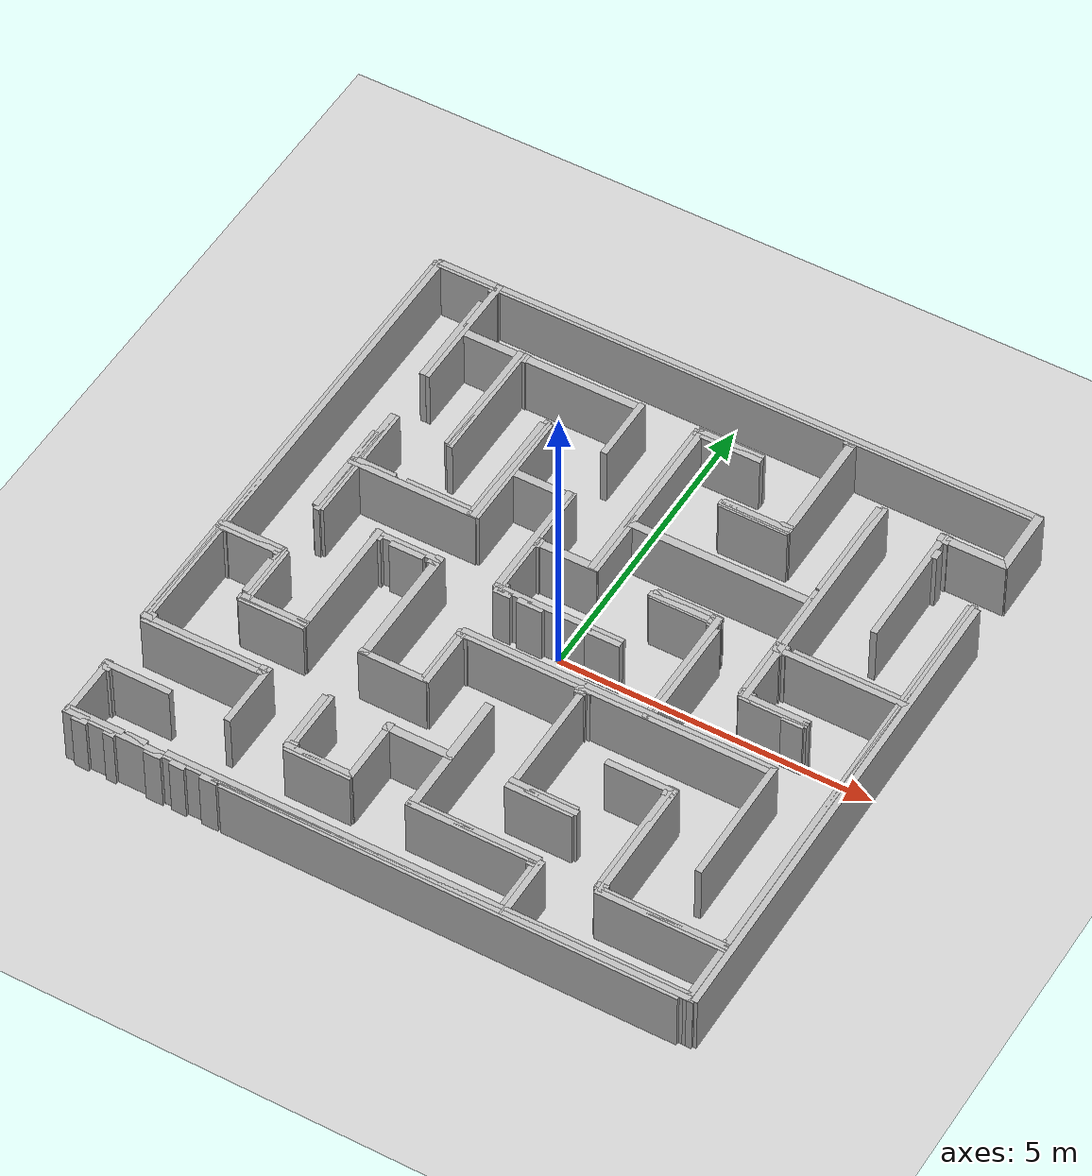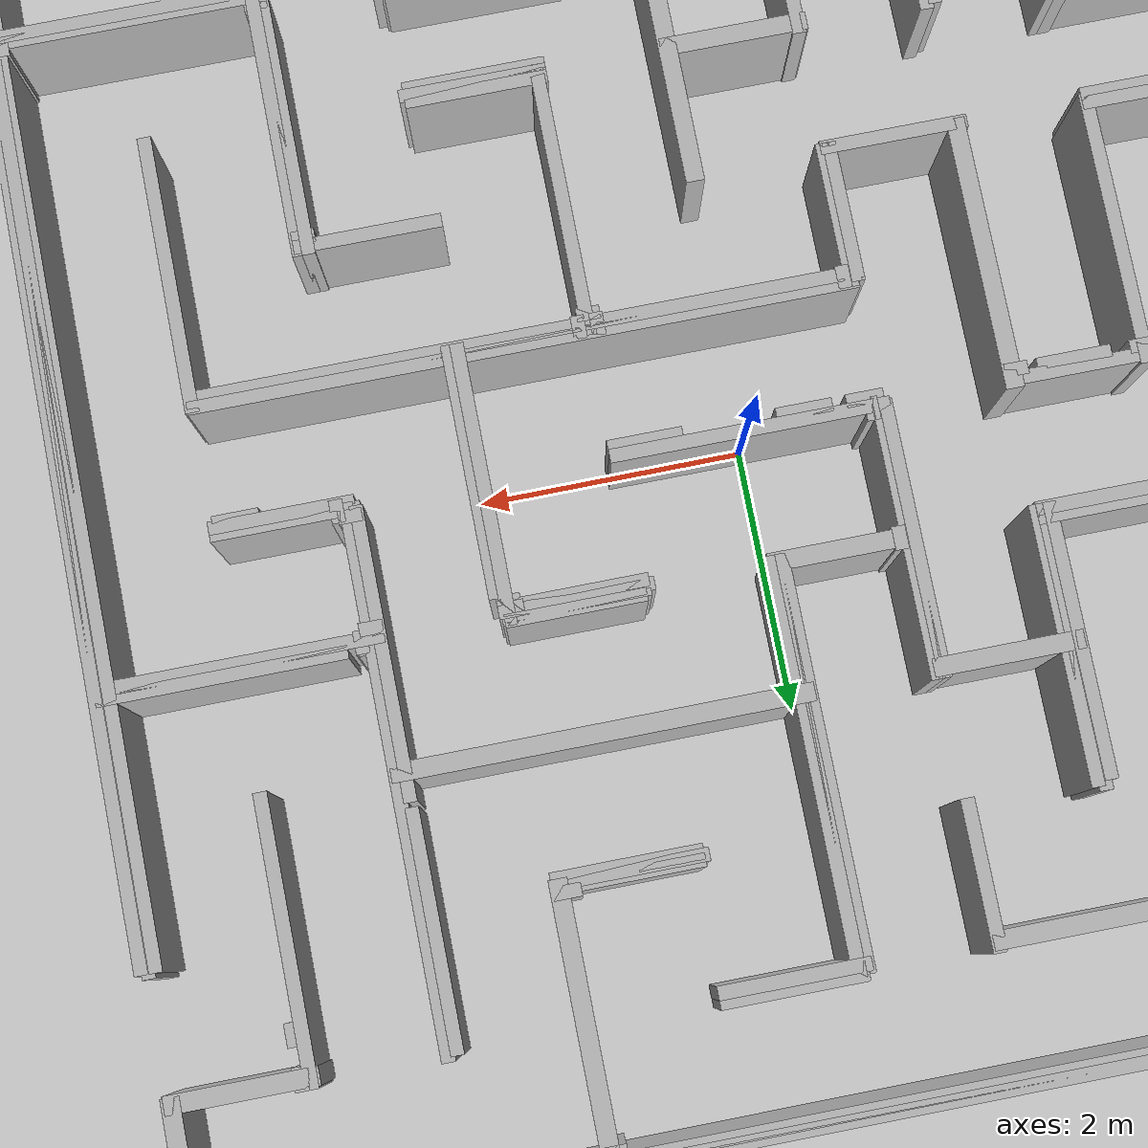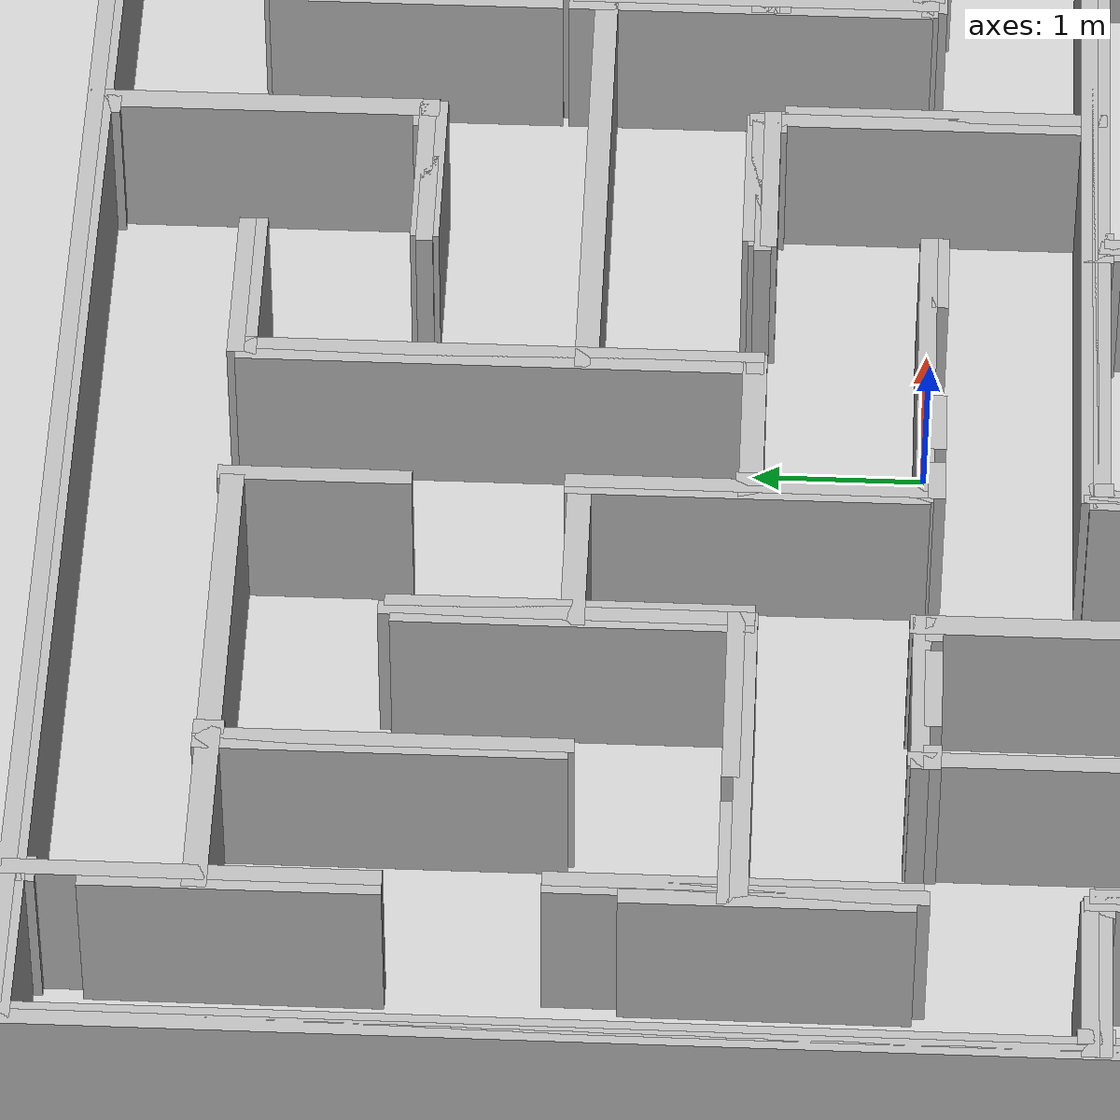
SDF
<?xml version="1.0" ?>
<sdf version="1.6">
  <world name="maze_from_image">
    <include><uri>model://sun</uri></include>
    <include><uri>model://ground_plane</uri></include>
    <model name="wall_h0">
      <static>true</static><pose>0.000 4.983 0.5 0 0 0</pose>
      <link name="link"><collision name="c"><geometry><box><size>9.965 0.100 1.0</size></box></geometry></collision>
      <visual name="v"><geometry><box><size>9.965 0.100 1.0</size></box></geometry></visual></link>
    </model>
    <model name="wall_h1">
      <static>true</static><pose>-0.017 4.931 0.5 0 0 0</pose>
      <link name="link"><collision name="c"><geometry><box><size>10.000 0.100 1.0</size></box></geometry></collision>
      <visual name="v"><geometry><box><size>10.000 0.100 1.0</size></box></geometry></visual></link>
    </model>
    <model name="wall_h2">
      <static>true</static><pose>-3.958 4.878 0.5 0 0 0</pose>
      <link name="link"><collision name="c"><geometry><box><size>0.174 0.100 1.0</size></box></geometry></collision>
      <visual name="v"><geometry><box><size>0.174 0.100 1.0</size></box></geometry></visual></link>
    </model>
    <model name="wall_h3">
      <static>true</static><pose>1.944 4.878 0.5 0 0 0</pose>
      <link name="link"><collision name="c"><geometry><box><size>0.174 0.100 1.0</size></box></geometry></collision>
      <visual name="v"><geometry><box><size>0.174 0.100 1.0</size></box></geometry></visual></link>
    </model>
    <model name="wall_h4">
      <static>true</static><pose>-2.500 3.958 0.5 0 0 0</pose>
      <link name="link"><collision name="c"><geometry><box><size>3.090 0.139 1.0</size></box></geometry></collision>
      <visual name="v"><geometry><box><size>3.090 0.139 1.0</size></box></geometry></visual></link>
    </model>
    <model name="wall_h5">
      <static>true</static><pose>0.486 4.010 0.5 0 0 0</pose>
      <link name="link"><collision name="c"><geometry><box><size>1.076 0.100 1.0</size></box></geometry></collision>
      <visual name="v"><geometry><box><size>1.076 0.100 1.0</size></box></geometry></visual></link>
    </model>
    <model name="wall_h6">
      <static>true</static><pose>4.427 3.958 0.5 0 0 0</pose>
      <link name="link"><collision name="c"><geometry><box><size>1.111 0.139 1.0</size></box></geometry></collision>
      <visual name="v"><geometry><box><size>1.111 0.139 1.0</size></box></geometry></visual></link>
    </model>
    <model name="wall_h7">
      <static>true</static><pose>0.469 3.941 0.5 0 0 0</pose>
      <link name="link"><collision name="c"><geometry><box><size>1.111 0.104 1.0</size></box></geometry></collision>
      <visual name="v"><geometry><box><size>1.111 0.104 1.0</size></box></geometry></visual></link>
    </model>
    <model name="wall_h8">
      <static>true</static><pose>1.927 3.038 0.5 0 0 0</pose>
      <link name="link"><collision name="c"><geometry><box><size>0.208 0.100 1.0</size></box></geometry></collision>
      <visual name="v"><geometry><box><size>0.208 0.100 1.0</size></box></geometry></visual></link>
    </model>
    <model name="wall_h9">
      <static>true</static><pose>1.476 3.003 0.5 0 0 0</pose>
      <link name="link"><collision name="c"><geometry><box><size>1.111 0.100 1.0</size></box></geometry></collision>
      <visual name="v"><geometry><box><size>1.111 0.100 1.0</size></box></geometry></visual></link>
    </model>
    <model name="wall_h10">
      <static>true</static><pose>1.458 2.969 0.5 0 0 0</pose>
      <link name="link"><collision name="c"><geometry><box><size>1.146 0.100 1.0</size></box></geometry></collision>
      <visual name="v"><geometry><box><size>1.146 0.100 1.0</size></box></geometry></visual></link>
    </model>
    <model name="wall_h11">
      <static>true</static><pose>1.476 2.934 0.5 0 0 0</pose>
      <link name="link"><collision name="c"><geometry><box><size>1.111 0.100 1.0</size></box></geometry></collision>
      <visual name="v"><geometry><box><size>1.111 0.100 1.0</size></box></geometry></visual></link>
    </model>
    <model name="wall_h12">
      <static>true</static><pose>-1.510 1.979 0.5 0 0 0</pose>
      <link name="link"><collision name="c"><geometry><box><size>1.111 0.139 1.0</size></box></geometry></collision>
      <visual name="v"><geometry><box><size>1.111 0.139 1.0</size></box></geometry></visual></link>
    </model>
    <model name="wall_h13">
      <static>true</static><pose>1.458 1.979 0.5 0 0 0</pose>
      <link name="link"><collision name="c"><geometry><box><size>3.090 0.139 1.0</size></box></geometry></collision>
      <visual name="v"><geometry><box><size>3.090 0.139 1.0</size></box></geometry></visual></link>
    </model>
    <model name="wall_h14">
      <static>true</static><pose>-3.681 1.059 0.5 0 0 0</pose>
      <link name="link"><collision name="c"><geometry><box><size>0.729 0.100 1.0</size></box></geometry></collision>
      <visual name="v"><geometry><box><size>0.729 0.100 1.0</size></box></geometry></visual></link>
    </model>
    <model name="wall_h15">
      <static>true</static><pose>-2.535 1.059 0.5 0 0 0</pose>
      <link name="link"><collision name="c"><geometry><box><size>1.215 0.100 1.0</size></box></geometry></collision>
      <visual name="v"><geometry><box><size>1.215 0.100 1.0</size></box></geometry></visual></link>
    </model>
    <model name="wall_h16">
      <static>true</static><pose>-0.503 1.007 0.5 0 0 0</pose>
      <link name="link"><collision name="c"><geometry><box><size>1.111 0.139 1.0</size></box></geometry></collision>
      <visual name="v"><geometry><box><size>1.111 0.139 1.0</size></box></geometry></visual></link>
    </model>
    <model name="wall_h17">
      <static>true</static><pose>1.476 1.059 0.5 0 0 0</pose>
      <link name="link"><collision name="c"><geometry><box><size>1.042 0.100 1.0</size></box></geometry></collision>
      <visual name="v"><geometry><box><size>1.042 0.100 1.0</size></box></geometry></visual></link>
    </model>
    <model name="wall_h18">
      <static>true</static><pose>2.969 1.059 0.5 0 0 0</pose>
      <link name="link"><collision name="c"><geometry><box><size>0.208 0.100 1.0</size></box></geometry></collision>
      <visual name="v"><geometry><box><size>0.208 0.100 1.0</size></box></geometry></visual></link>
    </model>
    <model name="wall_h19">
      <static>true</static><pose>4.062 1.059 0.5 0 0 0</pose>
      <link name="link"><collision name="c"><geometry><box><size>1.840 0.100 1.0</size></box></geometry></collision>
      <visual name="v"><geometry><box><size>1.840 0.100 1.0</size></box></geometry></visual></link>
    </model>
    <model name="wall_h20">
      <static>true</static><pose>-2.986 0.990 0.5 0 0 0</pose>
      <link name="link"><collision name="c"><geometry><box><size>2.118 0.104 1.0</size></box></geometry></collision>
      <visual name="v"><geometry><box><size>2.118 0.104 1.0</size></box></geometry></visual></link>
    </model>
    <model name="wall_h21">
      <static>true</static><pose>1.458 1.024 0.5 0 0 0</pose>
      <link name="link"><collision name="c"><geometry><box><size>1.076 0.100 1.0</size></box></geometry></collision>
      <visual name="v"><geometry><box><size>1.076 0.100 1.0</size></box></geometry></visual></link>
    </model>
    <model name="wall_h22">
      <static>true</static><pose>3.924 0.990 0.5 0 0 0</pose>
      <link name="link"><collision name="c"><geometry><box><size>2.118 0.104 1.0</size></box></geometry></collision>
      <visual name="v"><geometry><box><size>2.118 0.104 1.0</size></box></geometry></visual></link>
    </model>
    <model name="wall_h23">
      <static>true</static><pose>1.458 0.990 0.5 0 0 0</pose>
      <link name="link"><collision name="c"><geometry><box><size>1.146 0.100 1.0</size></box></geometry></collision>
      <visual name="v"><geometry><box><size>1.146 0.100 1.0</size></box></geometry></visual></link>
    </model>
    <model name="wall_h24">
      <static>true</static><pose>1.476 0.955 0.5 0 0 0</pose>
      <link name="link"><collision name="c"><geometry><box><size>1.111 0.100 1.0</size></box></geometry></collision>
      <visual name="v"><geometry><box><size>1.111 0.100 1.0</size></box></geometry></visual></link>
    </model>
    <model name="wall_h25">
      <static>true</static><pose>1.944 0.920 0.5 0 0 0</pose>
      <link name="link"><collision name="c"><geometry><box><size>0.174 0.100 1.0</size></box></geometry></collision>
      <visual name="v"><geometry><box><size>0.174 0.100 1.0</size></box></geometry></visual></link>
    </model>
    <model name="wall_h26">
      <static>true</static><pose>2.951 0.920 0.5 0 0 0</pose>
      <link name="link"><collision name="c"><geometry><box><size>0.174 0.100 1.0</size></box></geometry></collision>
      <visual name="v"><geometry><box><size>0.174 0.100 1.0</size></box></geometry></visual></link>
    </model>
    <model name="wall_h27">
      <static>true</static><pose>2.951 0.087 0.5 0 0 0</pose>
      <link name="link"><collision name="c"><geometry><box><size>0.174 0.100 1.0</size></box></geometry></collision>
      <visual name="v"><geometry><box><size>0.174 0.100 1.0</size></box></geometry></visual></link>
    </model>
    <model name="wall_h28">
      <static>true</static><pose>-2.483 0.017 0.5 0 0 0</pose>
      <link name="link"><collision name="c"><geometry><box><size>1.111 0.104 1.0</size></box></geometry></collision>
      <visual name="v"><geometry><box><size>1.111 0.104 1.0</size></box></geometry></visual></link>
    </model>
    <model name="wall_h29">
      <static>true</static><pose>-0.017 0.017 0.5 0 0 0</pose>
      <link name="link"><collision name="c"><geometry><box><size>2.083 0.104 1.0</size></box></geometry></collision>
      <visual name="v"><geometry><box><size>2.083 0.104 1.0</size></box></geometry></visual></link>
    </model>
    <model name="wall_h30">
      <static>true</static><pose>3.420 0.035 0.5 0 0 0</pose>
      <link name="link"><collision name="c"><geometry><box><size>1.111 0.100 1.0</size></box></geometry></collision>
      <visual name="v"><geometry><box><size>1.111 0.100 1.0</size></box></geometry></visual></link>
    </model>
    <model name="wall_h31">
      <static>true</static><pose>3.438 -0.017 0.5 0 0 0</pose>
      <link name="link"><collision name="c"><geometry><box><size>1.076 0.100 1.0</size></box></geometry></collision>
      <visual name="v"><geometry><box><size>1.076 0.100 1.0</size></box></geometry></visual></link>
    </model>
    <model name="wall_h32">
      <static>true</static><pose>-2.951 -0.052 0.5 0 0 0</pose>
      <link name="link"><collision name="c"><geometry><box><size>0.174 0.100 1.0</size></box></geometry></collision>
      <visual name="v"><geometry><box><size>0.174 0.100 1.0</size></box></geometry></visual></link>
    </model>
    <model name="wall_h33">
      <static>true</static><pose>-2.448 -0.052 0.5 0 0 0</pose>
      <link name="link"><collision name="c"><geometry><box><size>0.556 0.100 1.0</size></box></geometry></collision>
      <visual name="v"><geometry><box><size>0.556 0.100 1.0</size></box></geometry></visual></link>
    </model>
    <model name="wall_h34">
      <static>true</static><pose>-2.014 -0.052 0.5 0 0 0</pose>
      <link name="link"><collision name="c"><geometry><box><size>0.174 0.100 1.0</size></box></geometry></collision>
      <visual name="v"><geometry><box><size>0.174 0.100 1.0</size></box></geometry></visual></link>
    </model>
    <model name="wall_h35">
      <static>true</static><pose>-0.885 -0.052 0.5 0 0 0</pose>
      <link name="link"><collision name="c"><geometry><box><size>0.278 0.100 1.0</size></box></geometry></collision>
      <visual name="v"><geometry><box><size>0.278 0.100 1.0</size></box></geometry></visual></link>
    </model>
    <model name="wall_h36">
      <static>true</static><pose>-0.434 -0.052 0.5 0 0 0</pose>
      <link name="link"><collision name="c"><geometry><box><size>0.417 0.100 1.0</size></box></geometry></collision>
      <visual name="v"><geometry><box><size>0.417 0.100 1.0</size></box></geometry></visual></link>
    </model>
    <model name="wall_h37">
      <static>true</static><pose>0.747 -0.052 0.5 0 0 0</pose>
      <link name="link"><collision name="c"><geometry><box><size>0.556 0.100 1.0</size></box></geometry></collision>
      <visual name="v"><geometry><box><size>0.556 0.100 1.0</size></box></geometry></visual></link>
    </model>
    <model name="wall_h38">
      <static>true</static><pose>3.767 -0.052 0.5 0 0 0</pose>
      <link name="link"><collision name="c"><geometry><box><size>0.347 0.100 1.0</size></box></geometry></collision>
      <visual name="v"><geometry><box><size>0.347 0.100 1.0</size></box></geometry></visual></link>
    </model>
    <model name="wall_h39">
      <static>true</static><pose>-4.479 -0.920 0.5 0 0 0</pose>
      <link name="link"><collision name="c"><geometry><box><size>1.076 0.100 1.0</size></box></geometry></collision>
      <visual name="v"><geometry><box><size>1.076 0.100 1.0</size></box></geometry></visual></link>
    </model>
    <model name="wall_h40">
      <static>true</static><pose>1.476 -0.920 0.5 0 0 0</pose>
      <link name="link"><collision name="c"><geometry><box><size>5.000 0.100 1.0</size></box></geometry></collision>
      <visual name="v"><geometry><box><size>5.000 0.100 1.0</size></box></geometry></visual></link>
    </model>
    <model name="wall_h41">
      <static>true</static><pose>-4.462 -0.990 0.5 0 0 0</pose>
      <link name="link"><collision name="c"><geometry><box><size>1.111 0.104 1.0</size></box></geometry></collision>
      <visual name="v"><geometry><box><size>1.111 0.104 1.0</size></box></geometry></visual></link>
    </model>
    <model name="wall_h42">
      <static>true</static><pose>1.458 -0.990 0.5 0 0 0</pose>
      <link name="link"><collision name="c"><geometry><box><size>5.035 0.104 1.0</size></box></geometry></collision>
      <visual name="v"><geometry><box><size>5.035 0.104 1.0</size></box></geometry></visual></link>
    </model>
    <model name="wall_h43">
      <static>true</static><pose>0.972 -1.059 0.5 0 0 0</pose>
      <link name="link"><collision name="c"><geometry><box><size>0.174 0.100 1.0</size></box></geometry></collision>
      <visual name="v"><geometry><box><size>0.174 0.100 1.0</size></box></geometry></visual></link>
    </model>
    <model name="wall_h44">
      <static>true</static><pose>-3.472 -1.927 0.5 0 0 0</pose>
      <link name="link"><collision name="c"><geometry><box><size>1.076 0.100 1.0</size></box></geometry></collision>
      <visual name="v"><geometry><box><size>1.076 0.100 1.0</size></box></geometry></visual></link>
    </model>
    <model name="wall_h45">
      <static>true</static><pose>-1.510 -1.962 0.5 0 0 0</pose>
      <link name="link"><collision name="c"><geometry><box><size>1.111 0.104 1.0</size></box></geometry></collision>
      <visual name="v"><geometry><box><size>1.111 0.104 1.0</size></box></geometry></visual></link>
    </model>
    <model name="wall_h46">
      <static>true</static><pose>2.448 -1.962 0.5 0 0 0</pose>
      <link name="link"><collision name="c"><geometry><box><size>1.111 0.104 1.0</size></box></geometry></collision>
      <visual name="v"><geometry><box><size>1.111 0.104 1.0</size></box></geometry></visual></link>
    </model>
    <model name="wall_h47">
      <static>true</static><pose>-3.490 -1.962 0.5 0 0 0</pose>
      <link name="link"><collision name="c"><geometry><box><size>1.111 0.100 1.0</size></box></geometry></collision>
      <visual name="v"><geometry><box><size>1.111 0.100 1.0</size></box></geometry></visual></link>
    </model>
    <model name="wall_h48">
      <static>true</static><pose>-3.472 -1.997 0.5 0 0 0</pose>
      <link name="link"><collision name="c"><geometry><box><size>1.076 0.100 1.0</size></box></geometry></collision>
      <visual name="v"><geometry><box><size>1.076 0.100 1.0</size></box></geometry></visual></link>
    </model>
    <model name="wall_h49">
      <static>true</static><pose>2.917 -2.031 0.5 0 0 0</pose>
      <link name="link"><collision name="c"><geometry><box><size>0.174 0.100 1.0</size></box></geometry></collision>
      <visual name="v"><geometry><box><size>0.174 0.100 1.0</size></box></geometry></visual></link>
    </model>
    <model name="wall_h50">
      <static>true</static><pose>-3.976 -2.934 0.5 0 0 0</pose>
      <link name="link"><collision name="c"><geometry><box><size>2.083 0.104 1.0</size></box></geometry></collision>
      <visual name="v"><geometry><box><size>2.083 0.104 1.0</size></box></geometry></visual></link>
    </model>
    <model name="wall_h51">
      <static>true</static><pose>-0.503 -2.951 0.5 0 0 0</pose>
      <link name="link"><collision name="c"><geometry><box><size>1.111 0.139 1.0</size></box></geometry></collision>
      <visual name="v"><geometry><box><size>1.111 0.139 1.0</size></box></geometry></visual></link>
    </model>
    <model name="wall_h52">
      <static>true</static><pose>1.458 -2.899 0.5 0 0 0</pose>
      <link name="link"><collision name="c"><geometry><box><size>1.076 0.100 1.0</size></box></geometry></collision>
      <visual name="v"><geometry><box><size>1.076 0.100 1.0</size></box></geometry></visual></link>
    </model>
    <model name="wall_h53">
      <static>true</static><pose>1.476 -2.951 0.5 0 0 0</pose>
      <link name="link"><collision name="c"><geometry><box><size>1.111 0.100 1.0</size></box></geometry></collision>
      <visual name="v"><geometry><box><size>1.111 0.100 1.0</size></box></geometry></visual></link>
    </model>
    <model name="wall_h54">
      <static>true</static><pose>-3.958 -3.003 0.5 0 0 0</pose>
      <link name="link"><collision name="c"><geometry><box><size>2.049 0.100 1.0</size></box></geometry></collision>
      <visual name="v"><geometry><box><size>2.049 0.100 1.0</size></box></geometry></visual></link>
    </model>
    <model name="wall_h55">
      <static>true</static><pose>1.458 -3.003 0.5 0 0 0</pose>
      <link name="link"><collision name="c"><geometry><box><size>1.076 0.100 1.0</size></box></geometry></collision>
      <visual name="v"><geometry><box><size>1.076 0.100 1.0</size></box></geometry></visual></link>
    </model>
    <model name="wall_h56">
      <static>true</static><pose>-1.979 -3.872 0.5 0 0 0</pose>
      <link name="link"><collision name="c"><geometry><box><size>0.174 0.100 1.0</size></box></geometry></collision>
      <visual name="v"><geometry><box><size>0.174 0.100 1.0</size></box></geometry></visual></link>
    </model>
    <model name="wall_h57">
      <static>true</static><pose>2.951 -3.872 0.5 0 0 0</pose>
      <link name="link"><collision name="c"><geometry><box><size>0.174 0.100 1.0</size></box></geometry></collision>
      <visual name="v"><geometry><box><size>0.174 0.100 1.0</size></box></geometry></visual></link>
    </model>
    <model name="wall_h58">
      <static>true</static><pose>4.896 -3.872 0.5 0 0 0</pose>
      <link name="link"><collision name="c"><geometry><box><size>0.174 0.100 1.0</size></box></geometry></collision>
      <visual name="v"><geometry><box><size>0.174 0.100 1.0</size></box></geometry></visual></link>
    </model>
    <model name="wall_h59">
      <static>true</static><pose>-4.462 -3.941 0.5 0 0 0</pose>
      <link name="link"><collision name="c"><geometry><box><size>1.111 0.104 1.0</size></box></geometry></collision>
      <visual name="v"><geometry><box><size>1.111 0.104 1.0</size></box></geometry></visual></link>
    </model>
    <model name="wall_h60">
      <static>true</static><pose>-1.510 -3.924 0.5 0 0 0</pose>
      <link name="link"><collision name="c"><geometry><box><size>1.111 0.100 1.0</size></box></geometry></collision>
      <visual name="v"><geometry><box><size>1.111 0.100 1.0</size></box></geometry></visual></link>
    </model>
    <model name="wall_h61">
      <static>true</static><pose>0.955 -3.906 0.5 0 0 0</pose>
      <link name="link"><collision name="c"><geometry><box><size>2.083 0.100 1.0</size></box></geometry></collision>
      <visual name="v"><geometry><box><size>2.083 0.100 1.0</size></box></geometry></visual></link>
    </model>
    <model name="wall_h62">
      <static>true</static><pose>3.924 -3.924 0.5 0 0 0</pose>
      <link name="link"><collision name="c"><geometry><box><size>2.118 0.100 1.0</size></box></geometry></collision>
      <visual name="v"><geometry><box><size>2.118 0.100 1.0</size></box></geometry></visual></link>
    </model>
    <model name="wall_h63">
      <static>true</static><pose>0.972 -3.958 0.5 0 0 0</pose>
      <link name="link"><collision name="c"><geometry><box><size>2.118 0.100 1.0</size></box></geometry></collision>
      <visual name="v"><geometry><box><size>2.118 0.100 1.0</size></box></geometry></visual></link>
    </model>
    <model name="wall_h64">
      <static>true</static><pose>-1.493 -3.976 0.5 0 0 0</pose>
      <link name="link"><collision name="c"><geometry><box><size>1.076 0.100 1.0</size></box></geometry></collision>
      <visual name="v"><geometry><box><size>1.076 0.100 1.0</size></box></geometry></visual></link>
    </model>
    <model name="wall_h65">
      <static>true</static><pose>3.941 -3.976 0.5 0 0 0</pose>
      <link name="link"><collision name="c"><geometry><box><size>2.083 0.100 1.0</size></box></geometry></collision>
      <visual name="v"><geometry><box><size>2.083 0.100 1.0</size></box></geometry></visual></link>
    </model>
    <model name="wall_h66">
      <static>true</static><pose>-4.931 -4.010 0.5 0 0 0</pose>
      <link name="link"><collision name="c"><geometry><box><size>0.174 0.100 1.0</size></box></geometry></collision>
      <visual name="v"><geometry><box><size>0.174 0.100 1.0</size></box></geometry></visual></link>
    </model>
    <model name="wall_h67">
      <static>true</static><pose>1.944 -4.010 0.5 0 0 0</pose>
      <link name="link"><collision name="c"><geometry><box><size>0.174 0.100 1.0</size></box></geometry></collision>
      <visual name="v"><geometry><box><size>0.174 0.100 1.0</size></box></geometry></visual></link>
    </model>
    <model name="wall_h68">
      <static>true</static><pose>-4.549 -4.878 0.5 0 0 0</pose>
      <link name="link"><collision name="c"><geometry><box><size>0.938 0.100 1.0</size></box></geometry></collision>
      <visual name="v"><geometry><box><size>0.938 0.100 1.0</size></box></geometry></visual></link>
    </model>
    <model name="wall_h69">
      <static>true</static><pose>-3.872 -4.878 0.5 0 0 0</pose>
      <link name="link"><collision name="c"><geometry><box><size>0.347 0.100 1.0</size></box></geometry></collision>
      <visual name="v"><geometry><box><size>0.347 0.100 1.0</size></box></geometry></visual></link>
    </model>
    <model name="wall_h70">
      <static>true</static><pose>0.799 -4.878 0.5 0 0 0</pose>
      <link name="link"><collision name="c"><geometry><box><size>8.368 0.100 1.0</size></box></geometry></collision>
      <visual name="v"><geometry><box><size>8.368 0.100 1.0</size></box></geometry></visual></link>
    </model>
    <model name="wall_h71">
      <static>true</static><pose>-0.017 -4.931 0.5 0 0 0</pose>
      <link name="link"><collision name="c"><geometry><box><size>10.000 0.100 1.0</size></box></geometry></collision>
      <visual name="v"><geometry><box><size>10.000 0.100 1.0</size></box></geometry></visual></link>
    </model>
    <model name="wall_h72">
      <static>true</static><pose>-4.722 -4.983 0.5 0 0 0</pose>
      <link name="link"><collision name="c"><geometry><box><size>0.243 0.100 1.0</size></box></geometry></collision>
      <visual name="v"><geometry><box><size>0.243 0.100 1.0</size></box></geometry></visual></link>
    </model>
    <model name="wall_h73">
      <static>true</static><pose>-4.236 -4.983 0.5 0 0 0</pose>
      <link name="link"><collision name="c"><geometry><box><size>0.174 0.100 1.0</size></box></geometry></collision>
      <visual name="v"><geometry><box><size>0.174 0.100 1.0</size></box></geometry></visual></link>
    </model>
    <model name="wall_h74">
      <static>true</static><pose>-3.524 -4.983 0.5 0 0 0</pose>
      <link name="link"><collision name="c"><geometry><box><size>0.278 0.100 1.0</size></box></geometry></collision>
      <visual name="v"><geometry><box><size>0.278 0.100 1.0</size></box></geometry></visual></link>
    </model>
    <model name="wall_h75">
      <static>true</static><pose>-3.125 -4.983 0.5 0 0 0</pose>
      <link name="link"><collision name="c"><geometry><box><size>0.243 0.100 1.0</size></box></geometry></collision>
      <visual name="v"><geometry><box><size>0.243 0.100 1.0</size></box></geometry></visual></link>
    </model>
    <model name="wall_h76">
      <static>true</static><pose>-2.622 -4.983 0.5 0 0 0</pose>
      <link name="link"><collision name="c"><geometry><box><size>0.278 0.100 1.0</size></box></geometry></collision>
      <visual name="v"><geometry><box><size>0.278 0.100 1.0</size></box></geometry></visual></link>
    </model>
    <model name="wall_h77">
      <static>true</static><pose>1.163 -4.983 0.5 0 0 0</pose>
      <link name="link"><collision name="c"><geometry><box><size>7.222 0.100 1.0</size></box></geometry></collision>
      <visual name="v"><geometry><box><size>7.222 0.100 1.0</size></box></geometry></visual></link>
    </model>
    <model name="wall_v78">
      <static>true</static><pose>-4.983 1.007 0.5 0 0 0</pose>
      <link name="link"><collision name="c"><geometry><box><size>0.100 7.951 1.0</size></box></geometry></collision>
      <visual name="v"><geometry><box><size>0.100 7.951 1.0</size></box></geometry></visual></link>
    </model>
    <model name="wall_v79">
      <static>true</static><pose>-4.948 -4.410 0.5 0 0 0</pose>
      <link name="link"><collision name="c"><geometry><box><size>0.104 1.076 1.0</size></box></geometry></collision>
      <visual name="v"><geometry><box><size>0.104 1.076 1.0</size></box></geometry></visual></link>
    </model>
    <model name="wall_v80">
      <static>true</static><pose>-4.931 1.007 0.5 0 0 0</pose>
      <link name="link"><collision name="c"><geometry><box><size>0.100 8.021 1.0</size></box></geometry></collision>
      <visual name="v"><geometry><box><size>0.100 8.021 1.0</size></box></geometry></visual></link>
    </model>
    <model name="wall_v81">
      <static>true</static><pose>-4.878 -0.955 0.5 0 0 0</pose>
      <link name="link"><collision name="c"><geometry><box><size>0.100 0.208 1.0</size></box></geometry></collision>
      <visual name="v"><geometry><box><size>0.100 0.208 1.0</size></box></geometry></visual></link>
    </model>
    <model name="wall_v82">
      <static>true</static><pose>-4.878 -2.917 0.5 0 0 0</pose>
      <link name="link"><collision name="c"><geometry><box><size>0.100 0.174 1.0</size></box></geometry></collision>
      <visual name="v"><geometry><box><size>0.100 0.174 1.0</size></box></geometry></visual></link>
    </model>
    <model name="wall_v83">
      <static>true</static><pose>-4.010 3.767 0.5 0 0 0</pose>
      <link name="link"><collision name="c"><geometry><box><size>0.100 1.667 1.0</size></box></geometry></collision>
      <visual name="v"><geometry><box><size>0.100 1.667 1.0</size></box></geometry></visual></link>
    </model>
    <model name="wall_v84">
      <static>true</static><pose>-4.010 0.833 0.5 0 0 0</pose>
      <link name="link"><collision name="c"><geometry><box><size>0.100 1.632 1.0</size></box></geometry></collision>
      <visual name="v"><geometry><box><size>0.100 1.632 1.0</size></box></geometry></visual></link>
    </model>
    <model name="wall_v85">
      <static>true</static><pose>-4.010 -0.972 0.5 0 0 0</pose>
      <link name="link"><collision name="c"><geometry><box><size>0.100 0.174 1.0</size></box></geometry></collision>
      <visual name="v"><geometry><box><size>0.100 0.174 1.0</size></box></geometry></visual></link>
    </model>
    <model name="wall_v86">
      <static>true</static><pose>-4.010 -1.510 0.5 0 0 0</pose>
      <link name="link"><collision name="c"><geometry><box><size>0.100 0.694 1.0</size></box></geometry></collision>
      <visual name="v"><geometry><box><size>0.100 0.694 1.0</size></box></geometry></visual></link>
    </model>
    <model name="wall_v87">
      <static>true</static><pose>-3.941 3.976 0.5 0 0 0</pose>
      <link name="link"><collision name="c"><geometry><box><size>0.104 2.083 1.0</size></box></geometry></collision>
      <visual name="v"><geometry><box><size>0.104 2.083 1.0</size></box></geometry></visual></link>
    </model>
    <model name="wall_v88">
      <static>true</static><pose>-3.958 1.007 0.5 0 0 0</pose>
      <link name="link"><collision name="c"><geometry><box><size>0.100 2.118 1.0</size></box></geometry></collision>
      <visual name="v"><geometry><box><size>0.100 2.118 1.0</size></box></geometry></visual></link>
    </model>
    <model name="wall_v89">
      <static>true</static><pose>-3.958 -1.441 0.5 0 0 0</pose>
      <link name="link"><collision name="c"><geometry><box><size>0.100 1.111 1.0</size></box></geometry></collision>
      <visual name="v"><geometry><box><size>0.100 1.111 1.0</size></box></geometry></visual></link>
    </model>
    <model name="wall_v90">
      <static>true</static><pose>-3.906 1.024 0.5 0 0 0</pose>
      <link name="link"><collision name="c"><geometry><box><size>0.100 2.083 1.0</size></box></geometry></collision>
      <visual name="v"><geometry><box><size>0.100 2.083 1.0</size></box></geometry></visual></link>
    </model>
    <model name="wall_v91">
      <static>true</static><pose>-3.906 -1.458 0.5 0 0 0</pose>
      <link name="link"><collision name="c"><geometry><box><size>0.100 1.076 1.0</size></box></geometry></collision>
      <visual name="v"><geometry><box><size>0.100 1.076 1.0</size></box></geometry></visual></link>
    </model>
    <model name="wall_v92">
      <static>true</static><pose>-3.038 -2.951 0.5 0 0 0</pose>
      <link name="link"><collision name="c"><geometry><box><size>0.100 0.174 1.0</size></box></geometry></collision>
      <visual name="v"><geometry><box><size>0.100 0.174 1.0</size></box></geometry></visual></link>
    </model>
    <model name="wall_v93">
      <static>true</static><pose>-3.003 3.003 0.5 0 0 0</pose>
      <link name="link"><collision name="c"><geometry><box><size>0.100 2.083 1.0</size></box></geometry></collision>
      <visual name="v"><geometry><box><size>0.100 2.083 1.0</size></box></geometry></visual></link>
    </model>
    <model name="wall_v94">
      <static>true</static><pose>-2.969 -0.955 0.5 0 0 0</pose>
      <link name="link"><collision name="c"><geometry><box><size>0.104 2.083 1.0</size></box></geometry></collision>
      <visual name="v"><geometry><box><size>0.104 2.083 1.0</size></box></geometry></visual></link>
    </model>
    <model name="wall_v95">
      <static>true</static><pose>-2.969 -3.420 0.5 0 0 0</pose>
      <link name="link"><collision name="c"><geometry><box><size>0.104 1.111 1.0</size></box></geometry></collision>
      <visual name="v"><geometry><box><size>0.104 1.111 1.0</size></box></geometry></visual></link>
    </model>
    <model name="wall_v96">
      <static>true</static><pose>-2.951 2.986 0.5 0 0 0</pose>
      <link name="link"><collision name="c"><geometry><box><size>0.100 2.118 1.0</size></box></geometry></collision>
      <visual name="v"><geometry><box><size>0.100 2.118 1.0</size></box></geometry></visual></link>
    </model>
    <model name="wall_v97">
      <static>true</static><pose>-2.899 3.958 0.5 0 0 0</pose>
      <link name="link"><collision name="c"><geometry><box><size>0.100 0.174 1.0</size></box></geometry></collision>
      <visual name="v"><geometry><box><size>0.100 0.174 1.0</size></box></geometry></visual></link>
    </model>
    <model name="wall_v98">
      <static>true</static><pose>-2.031 1.979 0.5 0 0 0</pose>
      <link name="link"><collision name="c"><geometry><box><size>0.100 2.049 1.0</size></box></geometry></collision>
      <visual name="v"><geometry><box><size>0.100 2.049 1.0</size></box></geometry></visual></link>
    </model>
    <model name="wall_v99">
      <static>true</static><pose>-1.979 -0.955 0.5 0 0 0</pose>
      <link name="link"><collision name="c"><geometry><box><size>0.139 2.083 1.0</size></box></geometry></collision>
      <visual name="v"><geometry><box><size>0.139 2.083 1.0</size></box></geometry></visual></link>
    </model>
    <model name="wall_v100">
      <static>true</static><pose>-2.031 -3.420 0.5 0 0 0</pose>
      <link name="link"><collision name="c"><geometry><box><size>0.100 1.042 1.0</size></box></geometry></collision>
      <visual name="v"><geometry><box><size>0.100 1.042 1.0</size></box></geometry></visual></link>
    </model>
    <model name="wall_v101">
      <static>true</static><pose>-1.979 2.014 0.5 0 0 0</pose>
      <link name="link"><collision name="c"><geometry><box><size>0.100 2.118 1.0</size></box></geometry></collision>
      <visual name="v"><geometry><box><size>0.100 2.118 1.0</size></box></geometry></visual></link>
    </model>
    <model name="wall_v102">
      <static>true</static><pose>-1.962 -3.420 0.5 0 0 0</pose>
      <link name="link"><collision name="c"><geometry><box><size>0.104 1.111 1.0</size></box></geometry></collision>
      <visual name="v"><geometry><box><size>0.104 1.111 1.0</size></box></geometry></visual></link>
    </model>
    <model name="wall_v103">
      <static>true</static><pose>-1.927 1.997 0.5 0 0 0</pose>
      <link name="link"><collision name="c"><geometry><box><size>0.100 2.083 1.0</size></box></geometry></collision>
      <visual name="v"><geometry><box><size>0.100 2.083 1.0</size></box></geometry></visual></link>
    </model>
    <model name="wall_v104">
      <static>true</static><pose>-0.990 3.490 0.5 0 0 0</pose>
      <link name="link"><collision name="c"><geometry><box><size>0.104 1.111 1.0</size></box></geometry></collision>
      <visual name="v"><geometry><box><size>0.104 1.111 1.0</size></box></geometry></visual></link>
    </model>
    <model name="wall_v105">
      <static>true</static><pose>-1.024 1.024 0.5 0 0 0</pose>
      <link name="link"><collision name="c"><geometry><box><size>0.100 2.083 1.0</size></box></geometry></collision>
      <visual name="v"><geometry><box><size>0.100 2.083 1.0</size></box></geometry></visual></link>
    </model>
    <model name="wall_v106">
      <static>true</static><pose>-1.024 -1.458 0.5 0 0 0</pose>
      <link name="link"><collision name="c"><geometry><box><size>0.100 1.076 1.0</size></box></geometry></collision>
      <visual name="v"><geometry><box><size>0.100 1.076 1.0</size></box></geometry></visual></link>
    </model>
    <model name="wall_v107">
      <static>true</static><pose>-0.990 -3.420 0.5 0 0 0</pose>
      <link name="link"><collision name="c"><geometry><box><size>0.104 1.111 1.0</size></box></geometry></collision>
      <visual name="v"><geometry><box><size>0.104 1.111 1.0</size></box></geometry></visual></link>
    </model>
    <model name="wall_v108">
      <static>true</static><pose>-0.972 1.007 0.5 0 0 0</pose>
      <link name="link"><collision name="c"><geometry><box><size>0.100 2.118 1.0</size></box></geometry></collision>
      <visual name="v"><geometry><box><size>0.100 2.118 1.0</size></box></geometry></visual></link>
    </model>
    <model name="wall_v109">
      <static>true</static><pose>-0.972 -1.441 0.5 0 0 0</pose>
      <link name="link"><collision name="c"><geometry><box><size>0.100 1.111 1.0</size></box></geometry></collision>
      <visual name="v"><geometry><box><size>0.100 1.111 1.0</size></box></geometry></visual></link>
    </model>
    <model name="wall_v110">
      <static>true</static><pose>-0.920 1.007 0.5 0 0 0</pose>
      <link name="link"><collision name="c"><geometry><box><size>0.100 0.174 1.0</size></box></geometry></collision>
      <visual name="v"><geometry><box><size>0.100 0.174 1.0</size></box></geometry></visual></link>
    </model>
    <model name="wall_v111">
      <static>true</static><pose>-0.920 0.035 0.5 0 0 0</pose>
      <link name="link"><collision name="c"><geometry><box><size>0.100 0.174 1.0</size></box></geometry></collision>
      <visual name="v"><geometry><box><size>0.100 0.174 1.0</size></box></geometry></visual></link>
    </model>
    <model name="wall_v112">
      <static>true</static><pose>-0.920 -0.972 0.5 0 0 0</pose>
      <link name="link"><collision name="c"><geometry><box><size>0.100 0.174 1.0</size></box></geometry></collision>
      <visual name="v"><geometry><box><size>0.100 0.174 1.0</size></box></geometry></visual></link>
    </model>
    <model name="wall_v113">
      <static>true</static><pose>-0.052 2.483 0.5 0 0 0</pose>
      <link name="link"><collision name="c"><geometry><box><size>0.100 3.056 1.0</size></box></geometry></collision>
      <visual name="v"><geometry><box><size>0.100 3.056 1.0</size></box></geometry></visual></link>
    </model>
    <model name="wall_v114">
      <static>true</static><pose>0.000 -2.934 0.5 0 0 0</pose>
      <link name="link"><collision name="c"><geometry><box><size>0.139 2.083 1.0</size></box></geometry></collision>
      <visual name="v"><geometry><box><size>0.139 2.083 1.0</size></box></geometry></visual></link>
    </model>
    <model name="wall_v115">
      <static>true</static><pose>0.017 2.500 0.5 0 0 0</pose>
      <link name="link"><collision name="c"><geometry><box><size>0.104 3.090 1.0</size></box></geometry></collision>
      <visual name="v"><geometry><box><size>0.104 3.090 1.0</size></box></geometry></visual></link>
    </model>
    <model name="wall_v116">
      <static>true</static><pose>0.920 -0.972 0.5 0 0 0</pose>
      <link name="link"><collision name="c"><geometry><box><size>0.100 0.174 1.0</size></box></geometry></collision>
      <visual name="v"><geometry><box><size>0.100 0.174 1.0</size></box></geometry></visual></link>
    </model>
    <model name="wall_v117">
      <static>true</static><pose>0.990 -1.944 0.5 0 0 0</pose>
      <link name="link"><collision name="c"><geometry><box><size>0.104 2.118 1.0</size></box></geometry></collision>
      <visual name="v"><geometry><box><size>0.104 2.118 1.0</size></box></geometry></visual></link>
    </model>
    <model name="wall_v118">
      <static>true</static><pose>1.059 -0.972 0.5 0 0 0</pose>
      <link name="link"><collision name="c"><geometry><box><size>0.100 0.174 1.0</size></box></geometry></collision>
      <visual name="v"><geometry><box><size>0.100 0.174 1.0</size></box></geometry></visual></link>
    </model>
    <model name="wall_v119">
      <static>true</static><pose>1.892 1.007 0.5 0 0 0</pose>
      <link name="link"><collision name="c"><geometry><box><size>0.100 0.174 1.0</size></box></geometry></collision>
      <visual name="v"><geometry><box><size>0.100 0.174 1.0</size></box></geometry></visual></link>
    </model>
    <model name="wall_v120">
      <static>true</static><pose>1.979 3.976 0.5 0 0 0</pose>
      <link name="link"><collision name="c"><geometry><box><size>0.139 2.083 1.0</size></box></geometry></collision>
      <visual name="v"><geometry><box><size>0.139 2.083 1.0</size></box></geometry></visual></link>
    </model>
    <model name="wall_v121">
      <static>true</static><pose>1.962 0.035 0.5 0 0 0</pose>
      <link name="link"><collision name="c"><geometry><box><size>0.104 2.118 1.0</size></box></geometry></collision>
      <visual name="v"><geometry><box><size>0.104 2.118 1.0</size></box></geometry></visual></link>
    </model>
    <model name="wall_v122">
      <static>true</static><pose>1.962 -4.427 0.5 0 0 0</pose>
      <link name="link"><collision name="c"><geometry><box><size>0.104 1.111 1.0</size></box></geometry></collision>
      <visual name="v"><geometry><box><size>0.104 1.111 1.0</size></box></geometry></visual></link>
    </model>
    <model name="wall_v123">
      <static>true</static><pose>2.031 -0.069 0.5 0 0 0</pose>
      <link name="link"><collision name="c"><geometry><box><size>0.100 1.910 1.0</size></box></geometry></collision>
      <visual name="v"><geometry><box><size>0.100 1.910 1.0</size></box></geometry></visual></link>
    </model>
    <model name="wall_v124">
      <static>true</static><pose>2.031 -4.444 0.5 0 0 0</pose>
      <link name="link"><collision name="c"><geometry><box><size>0.100 1.076 1.0</size></box></geometry></collision>
      <visual name="v"><geometry><box><size>0.100 1.076 1.0</size></box></geometry></visual></link>
    </model>
    <model name="wall_v125">
      <static>true</static><pose>2.899 3.125 0.5 0 0 0</pose>
      <link name="link"><collision name="c"><geometry><box><size>0.100 1.771 1.0</size></box></geometry></collision>
      <visual name="v"><geometry><box><size>0.100 1.771 1.0</size></box></geometry></visual></link>
    </model>
    <model name="wall_v126">
      <static>true</static><pose>2.899 1.111 0.5 0 0 0</pose>
      <link name="link"><collision name="c"><geometry><box><size>0.100 2.188 1.0</size></box></geometry></collision>
      <visual name="v"><geometry><box><size>0.100 2.188 1.0</size></box></geometry></visual></link>
    </model>
    <model name="wall_v127">
      <static>true</static><pose>2.899 -2.917 0.5 0 0 0</pose>
      <link name="link"><collision name="c"><geometry><box><size>0.100 2.049 1.0</size></box></geometry></collision>
      <visual name="v"><geometry><box><size>0.100 2.049 1.0</size></box></geometry></visual></link>
    </model>
    <model name="wall_v128">
      <static>true</static><pose>2.969 2.014 0.5 0 0 0</pose>
      <link name="link"><collision name="c"><geometry><box><size>0.104 4.062 1.0</size></box></geometry></collision>
      <visual name="v"><geometry><box><size>0.104 4.062 1.0</size></box></geometry></visual></link>
    </model>
    <model name="wall_v129">
      <static>true</static><pose>2.969 -2.934 0.5 0 0 0</pose>
      <link name="link"><collision name="c"><geometry><box><size>0.104 2.083 1.0</size></box></geometry></collision>
      <visual name="v"><geometry><box><size>0.104 2.083 1.0</size></box></geometry></visual></link>
    </model>
    <model name="wall_v130">
      <static>true</static><pose>3.038 1.007 0.5 0 0 0</pose>
      <link name="link"><collision name="c"><geometry><box><size>0.100 0.174 1.0</size></box></geometry></collision>
      <visual name="v"><geometry><box><size>0.100 0.174 1.0</size></box></geometry></visual></link>
    </model>
    <model name="wall_v131">
      <static>true</static><pose>3.038 0.035 0.5 0 0 0</pose>
      <link name="link"><collision name="c"><geometry><box><size>0.100 0.174 1.0</size></box></geometry></collision>
      <visual name="v"><geometry><box><size>0.100 0.174 1.0</size></box></geometry></visual></link>
    </model>
    <model name="wall_v132">
      <static>true</static><pose>3.941 2.986 0.5 0 0 0</pose>
      <link name="link"><collision name="c"><geometry><box><size>0.104 2.118 1.0</size></box></geometry></collision>
      <visual name="v"><geometry><box><size>0.104 2.118 1.0</size></box></geometry></visual></link>
    </model>
    <model name="wall_v133">
      <static>true</static><pose>3.941 -1.944 0.5 0 0 0</pose>
      <link name="link"><collision name="c"><geometry><box><size>0.104 2.118 1.0</size></box></geometry></collision>
      <visual name="v"><geometry><box><size>0.104 2.118 1.0</size></box></geometry></visual></link>
    </model>
    <model name="wall_v134">
      <static>true</static><pose>4.010 3.958 0.5 0 0 0</pose>
      <link name="link"><collision name="c"><geometry><box><size>0.100 0.174 1.0</size></box></geometry></collision>
      <visual name="v"><geometry><box><size>0.100 0.174 1.0</size></box></geometry></visual></link>
    </model>
    <model name="wall_v135">
      <static>true</static><pose>4.010 3.646 0.5 0 0 0</pose>
      <link name="link"><collision name="c"><geometry><box><size>0.100 0.174 1.0</size></box></geometry></collision>
      <visual name="v"><geometry><box><size>0.100 0.174 1.0</size></box></geometry></visual></link>
    </model>
    <model name="wall_v136">
      <static>true</static><pose>4.931 4.462 0.5 0 0 0</pose>
      <link name="link"><collision name="c"><geometry><box><size>0.139 1.111 1.0</size></box></geometry></collision>
      <visual name="v"><geometry><box><size>0.139 1.111 1.0</size></box></geometry></visual></link>
    </model>
    <model name="wall_v137">
      <static>true</static><pose>4.878 -0.972 0.5 0 0 0</pose>
      <link name="link"><collision name="c"><geometry><box><size>0.100 8.021 1.0</size></box></geometry></collision>
      <visual name="v"><geometry><box><size>0.100 8.021 1.0</size></box></geometry></visual></link>
    </model>
    <model name="wall_v138">
      <static>true</static><pose>4.931 -0.955 0.5 0 0 0</pose>
      <link name="link"><collision name="c"><geometry><box><size>0.100 8.056 1.0</size></box></geometry></collision>
      <visual name="v"><geometry><box><size>0.100 8.056 1.0</size></box></geometry></visual></link>
    </model>
    <model name="wall_v139">
      <static>true</static><pose>4.983 -0.955 0.5 0 0 0</pose>
      <link name="link"><collision name="c"><geometry><box><size>0.100 7.986 1.0</size></box></geometry></collision>
      <visual name="v"><geometry><box><size>0.100 7.986 1.0</size></box></geometry></visual></link>
    </model>
  </world>
</sdf>
